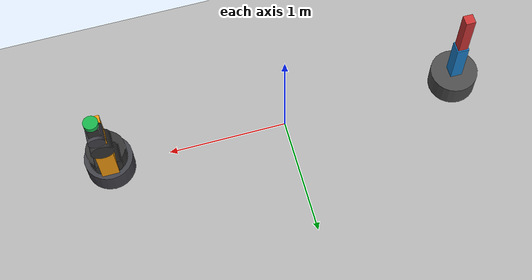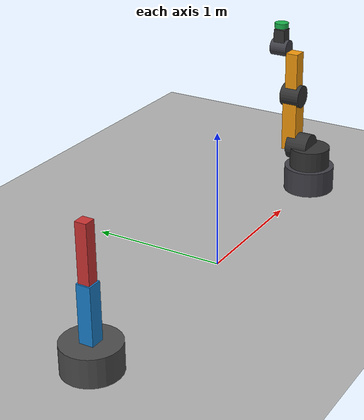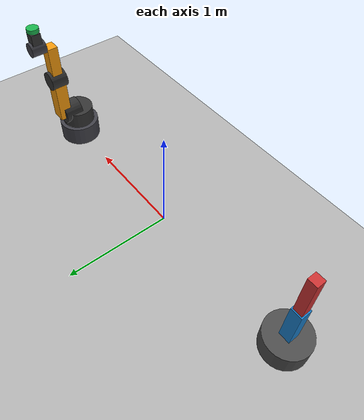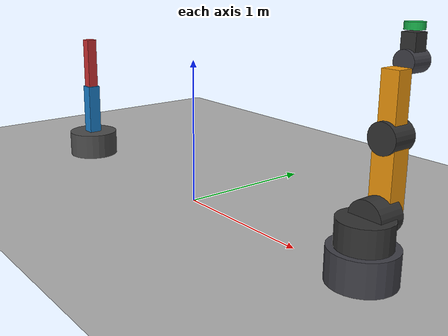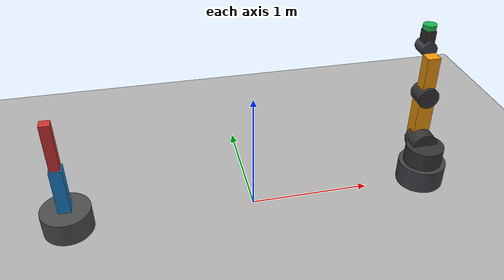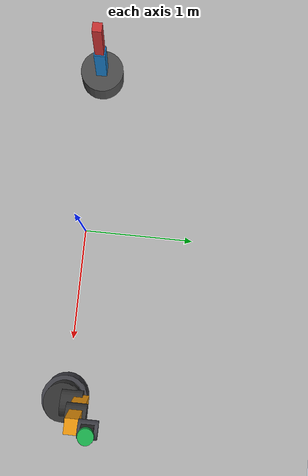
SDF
<?xml version="1.0" ?>
<sdf version="1.9">
  <world name="robot_world">

    <physics name="1ms" type="ode">
      <max_step_size>0.001</max_step_size>
      <real_time_factor>1</real_time_factor>
    </physics>

    <!-- World Plugins -->
    <plugin filename="gz-sim-physics-system" name="gz::sim::systems::Physics"/>
    <plugin filename="gz-sim-user-commands-system" name="gz::sim::systems::UserCommands"/>
    <plugin filename="gz-sim-scene-broadcaster-system" name="gz::sim::systems::SceneBroadcaster"/>

    <!-- Scene Lighting -->
    <scene>
      <ambient>0.6 0.6 0.6 1</ambient>
      <background>0.85 0.9 0.95 1</background>
      <shadows>true</shadows>
    </scene>

    <light type="directional" name="sun">
      <cast_shadows>true</cast_shadows>
      <pose>5 5 10 0 0 0</pose>
      <diffuse>0.9 0.9 0.9 1</diffuse>
      <direction>-0.5 -0.5 -1</direction>
    </light>

    <!-- Ground Plane -->
    <model name="ground">
      <static>true</static>
      <link name="ground_link">
        <collision name="collision">
          <geometry><plane><normal>0 0 1</normal><size>20 20</size></plane></geometry>
        </collision>
        <visual name="visual">
          <geometry><plane><normal>0 0 1</normal><size>20 20</size></plane></geometry>
          <material>
            <ambient>0.7 0.7 0.7 1</ambient>
            <diffuse>0.7 0.7 0.7 1</diffuse>
          </material>
        </visual>
      </link>
    </model>

    <!-- 2-DOF ROBOT ARM -->
    <model name="test_robot">
      <pose>-1.5 0 0 0 0 0</pose>
      <plugin filename="gz-sim-joint-state-publisher-system" name="gz::sim::systems::JointStatePublisher"/>

      <plugin filename="gz-sim-joint-position-controller-system" name="gz::sim::systems::JointPositionController">
        <joint_name>shoulder_joint</joint_name>
        <p_gain>100</p_gain><i_gain>0.1</i_gain><d_gain>10</d_gain>
        <topic>/model/test_robot/joint/shoulder_joint/cmd_pos</topic>
      </plugin>

      <plugin filename="gz-sim-joint-position-controller-system" name="gz::sim::systems::JointPositionController">
        <joint_name>elbow_joint</joint_name>
        <p_gain>50</p_gain><i_gain>0.1</i_gain><d_gain>5</d_gain>
        <topic>/model/test_robot/joint/elbow_joint/cmd_pos</topic>
      </plugin>

      <link name="base_link">
        <pose>0 0 0.1 0 0 0</pose>
        <inertial><mass>10</mass><inertia><ixx>0.1</ixx><iyy>0.1</iyy><izz>0.1</izz></inertia></inertial>
        <visual name="visual">
          <geometry><cylinder><radius>0.2</radius><length>0.2</length></cylinder></geometry>
          <material><ambient>0.3 0.3 0.3 1</ambient><diffuse>0.3 0.3 0.3 1</diffuse></material>
        </visual>
      </link>

      <joint name="world_fixed" type="fixed"><parent>world</parent><child>base_link</child></joint>

      <link name="shoulder_link">
        <pose>0 0 0.4 0 0 0</pose>
        <inertial><mass>2</mass><inertia><ixx>0.02</ixx><iyy>0.02</iyy><izz>0.02</izz></inertia></inertial>
        <visual name="visual">
          <geometry><box><size>0.1 0.1 0.4</size></box></geometry>
          <material><ambient>0.1 0.5 0.8 1</ambient><diffuse>0.1 0.5 0.8 1</diffuse></material>
        </visual>
      </link>

      <joint name="shoulder_joint" type="revolute">
        <parent>base_link</parent><child>shoulder_link</child><pose>0 0 -0.2 0 0 0</pose>
        <axis><xyz>0 1 0</xyz><limit><lower>-1.57</lower><upper>1.57</upper></limit></axis>
      </joint>

      <link name="elbow_link">
        <pose>0 0 0.8 0 0 0</pose>
        <inertial><mass>1</mass><inertia><ixx>0.01</ixx><iyy>0.01</iyy><izz>0.01</izz></inertia></inertial>
        <visual name="visual">
          <geometry><box><size>0.08 0.08 0.4</size></box></geometry>
          <material><ambient>0.8 0.2 0.2 1</ambient><diffuse>0.8 0.2 0.2 1</diffuse></material>
        </visual>
      </link>

      <joint name="elbow_joint" type="revolute">
        <parent>shoulder_link</parent><child>elbow_link</child><pose>0 0 -0.2 0 0 0</pose>
        <axis><xyz>0 1 0</xyz><limit><lower>-1.57</lower><upper>1.57</upper></limit></axis>
      </joint>
    </model>

    <!-- 6-DOF INDUSTRIAL ROBOT ARM -->
    <model name="robot_6dof">
      <pose>1.5 0 0 0 0 0</pose>
      <plugin filename="gz-sim-joint-state-publisher-system" name="gz::sim::systems::JointStatePublisher"/>

      <plugin filename="gz-sim-joint-position-controller-system" name="gz::sim::systems::JointPositionController">
        <joint_name>joint_1</joint_name><p_gain>600</p_gain><i_gain>1.0</i_gain><d_gain>30</d_gain>
        <topic>/model/robot_6dof/joint/joint_1/cmd_pos</topic>
      </plugin>

      <plugin filename="gz-sim-joint-position-controller-system" name="gz::sim::systems::JointPositionController">
        <joint_name>joint_2</joint_name><p_gain>1500</p_gain><i_gain>3.0</i_gain><d_gain>100</d_gain>
        <topic>/model/robot_6dof/joint/joint_2/cmd_pos</topic>
      </plugin>

      <plugin filename="gz-sim-joint-position-controller-system" name="gz::sim::systems::JointPositionController">
        <joint_name>joint_3</joint_name><p_gain>1000</p_gain><i_gain>2.0</i_gain><d_gain>60</d_gain>
        <topic>/model/robot_6dof/joint/joint_3/cmd_pos</topic>
      </plugin>

      <plugin filename="gz-sim-joint-position-controller-system" name="gz::sim::systems::JointPositionController">
        <joint_name>joint_4</joint_name><p_gain>300</p_gain><i_gain>0.5</i_gain><d_gain>20</d_gain>
        <topic>/model/robot_6dof/joint/joint_4/cmd_pos</topic>
      </plugin>

      <plugin filename="gz-sim-joint-position-controller-system" name="gz::sim::systems::JointPositionController">
        <joint_name>joint_5</joint_name><p_gain>200</p_gain><i_gain>0.2</i_gain><d_gain>10</d_gain>
        <topic>/model/robot_6dof/joint/joint_5/cmd_pos</topic>
      </plugin>

      <plugin filename="gz-sim-joint-position-controller-system" name="gz::sim::systems::JointPositionController">
        <joint_name>joint_6</joint_name><p_gain>400</p_gain><i_gain>0.5</i_gain><d_gain>10</d_gain>
        <i_max>10.0</i_max><i_min>-10.0</i_min><cmd_max>50.0</cmd_max><cmd_min>-50.0</cmd_min>
        <topic>/model/robot_6dof/joint/joint_6/cmd_pos</topic>
      </plugin>

      <!-- BASE LINK -->
      <link name="base">
        <pose>0 0 0.1 0 0 0</pose>
        <inertial><mass>15.0</mass><inertia><ixx>0.4</ixx><iyy>0.4</iyy><izz>0.4</izz></inertia></inertial>
        <visual name="pedestal">
          <geometry><cylinder><radius>0.2</radius><length>0.2</length></cylinder></geometry>
          <material><ambient>0.25 0.25 0.28 1</ambient><diffuse>0.25 0.25 0.28 1</diffuse></material>
        </visual>
      </link>

      <joint name="world_fixed_joint" type="fixed"><parent>world</parent><child>base</child></joint>

      <!-- LINK 1 -->
      <link name="link_1">
        <pose>0 0 0.28 0 0 0</pose>
        <inertial><mass>5.0</mass><inertia><ixx>0.08</ixx><iyy>0.08</iyy><izz>0.08</izz></inertia></inertial>
        <visual name="visual">
          <geometry><cylinder><radius>0.16</radius><length>0.16</length></cylinder></geometry>
          <material><ambient>0.2 0.2 0.2 1</ambient><diffuse>0.2 0.2 0.2 1</diffuse></material>
        </visual>
      </link>

      <joint name="joint_1" type="revolute">
        <parent>base</parent><child>link_1</child><pose>0 0 -0.08 0 0 0</pose>
        <axis><xyz>0 0 1</xyz><limit><lower>-3.14</lower><upper>3.14</upper></limit><dynamics><damping>15</damping><friction>3</friction></dynamics></axis>
      </joint>

      <!-- LINK 2 -->
      <link name="link_2">
        <pose>0 0.16 0.55 0 0 0</pose>
        <inertial><mass>4.5</mass><inertia><ixx>0.1</ixx><iyy>0.1</iyy><izz>0.03</izz></inertia></inertial>
        <visual name="j2_hub">
          <pose>0 -0.08 -0.2 1.5708 0 0</pose>
          <geometry><cylinder><radius>0.11</radius><length>0.18</length></cylinder></geometry>
          <material><ambient>0.2 0.2 0.2 1</ambient><diffuse>0.2 0.2 0.2 1</diffuse></material>
        </visual>
        <visual name="upper_arm_body">
          <geometry><box><size>0.14 0.12 0.45</size></box></geometry>
          <material><ambient>0.95 0.6 0.05 1</ambient><diffuse>0.95 0.6 0.05 1</diffuse></material>
        </visual>
      </link>

      <joint name="joint_2" type="revolute">
        <parent>link_1</parent><child>link_2</child><pose>0 -0.08 -0.2 0 0 0</pose>
        <axis><xyz>0 1 0</xyz><limit><lower>-1.57</lower><upper>1.57</upper></limit><dynamics><damping>25</damping><friction>6</friction></dynamics></axis>
      </joint>

      <!-- LINK 3 -->
      <link name="link_3">
        <pose>0 0.16 0.95 0 0 0</pose>
        <inertial><mass>2.8</mass><inertia><ixx>0.05</ixx><iyy>0.05</iyy><izz>0.01</izz></inertia></inertial>
        <visual name="j3_hub">
          <pose>0 0 -0.18 1.5708 0 0</pose>
          <geometry><cylinder><radius>0.09</radius><length>0.16</length></cylinder></geometry>
          <material><ambient>0.2 0.2 0.2 1</ambient><diffuse>0.2 0.2 0.2 1</diffuse></material>
        </visual>
        <visual name="forearm_body">
          <geometry><box><size>0.11 0.1 0.35</size></box></geometry>
          <material><ambient>0.95 0.6 0.05 1</ambient><diffuse>0.95 0.6 0.05 1</diffuse></material>
        </visual>
      </link>

      <joint name="joint_3" type="revolute">
        <parent>link_2</parent><child>link_3</child><pose>0 0 -0.18 0 0 0</pose>
        <axis><xyz>0 1 0</xyz><limit><lower>-2.0</lower><upper>2.0</upper></limit><dynamics><damping>18</damping><friction>4</friction></dynamics></axis>
      </joint>

      <!-- LINK 4 -->
      <link name="link_4">
        <pose>0 0.28 1.15 0 0 0</pose>
        <inertial><mass>1.2</mass><inertia><ixx>0.01</ixx><iyy>0.01</iyy><izz>0.005</izz></inertia></inertial>
        <visual name="wrist_pitch_body">
          <pose>0 0 0 1.5708 0 0</pose>
          <geometry><cylinder><radius>0.065</radius><length>0.14</length></cylinder></geometry>
          <material><ambient>0.25 0.25 0.28 1</ambient><diffuse>0.25 0.25 0.28 1</diffuse></material>
        </visual>
      </link>

      <joint name="joint_4" type="revolute">
        <parent>link_3</parent><child>link_4</child><pose>0 -0.12 -0.02 0 0 0</pose>
        <axis><xyz>0 1 0</xyz><limit><lower>-1.57</lower><upper>1.57</upper></limit><dynamics><damping>6</damping><friction>1.2</friction></dynamics></axis>
      </joint>

      <!-- LINK 5 -->
      <link name="link_5">
        <pose>0 0.28 1.25 0 0 0</pose>
        <inertial><mass>0.6</mass><inertia><ixx>0.003</ixx><iyy>0.003</iyy><izz>0.002</izz></inertia></inertial>
        <visual name="wrist_roll_body">
          <geometry><box><size>0.09 0.09 0.1</size></box></geometry>
          <material><ambient>0.2 0.2 0.2 1</ambient><diffuse>0.2 0.2 0.2 1</diffuse></material>
        </visual>
      </link>

      <joint name="joint_5" type="revolute">
        <parent>link_4</parent><child>link_5</child><pose>0 0 -0.05 0 0 0</pose>
        <axis><xyz>1 0 0</xyz><limit><lower>-3.14</lower><upper>3.14</upper></limit><dynamics><damping>4</damping><friction>0.8</friction></dynamics></axis>
      </joint>

      <!-- LINK 6 -->
      <link name="link_6">
        <pose>0 0.28 1.33 0 0 0</pose>
        <inertial><mass>0.5</mass><inertia><ixx>0.01</ixx><iyy>0.01</iyy><izz>0.01</izz></inertia></inertial>
        <visual name="tool_flange">
          <geometry><cylinder><radius>0.055</radius><length>0.04</length></cylinder></geometry>
          <material><ambient>0.1 0.7 0.3 1</ambient><diffuse>0.1 0.7 0.3 1</diffuse></material>
        </visual>
      </link>

      <joint name="joint_6" type="revolute">
        <parent>link_5</parent><child>link_6</child><pose>0 0 0 0 0 0</pose>
        <axis><xyz>0 0 1</xyz><limit><lower>-3.14</lower><upper>3.14</upper></limit><dynamics><damping>0.1</damping><friction>0.01</friction></dynamics></axis>
      </joint>
    </model>

  </world>
</sdf>
